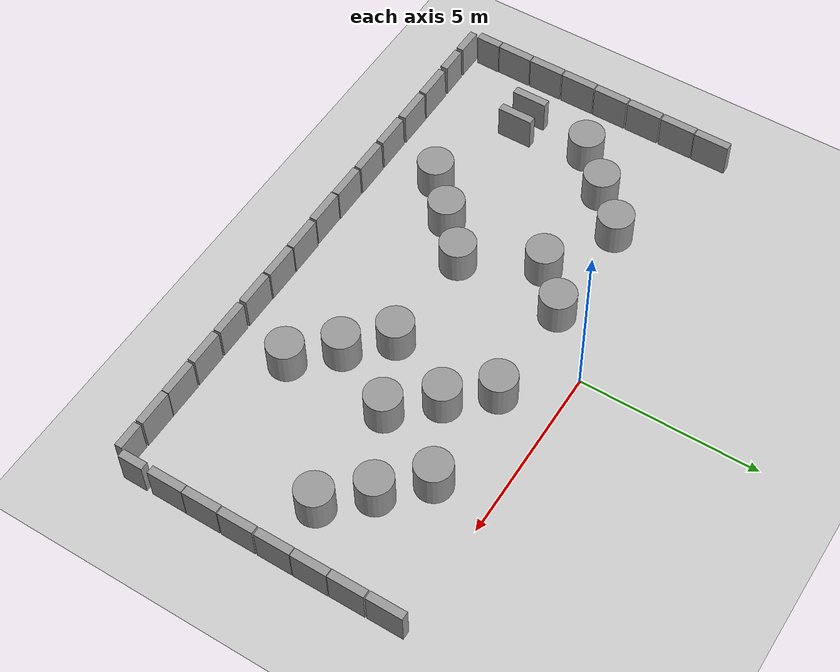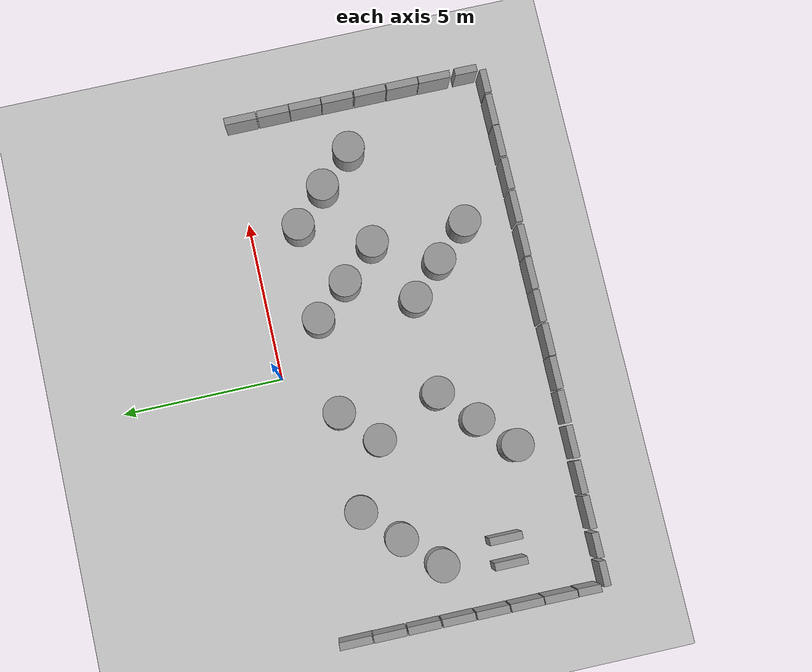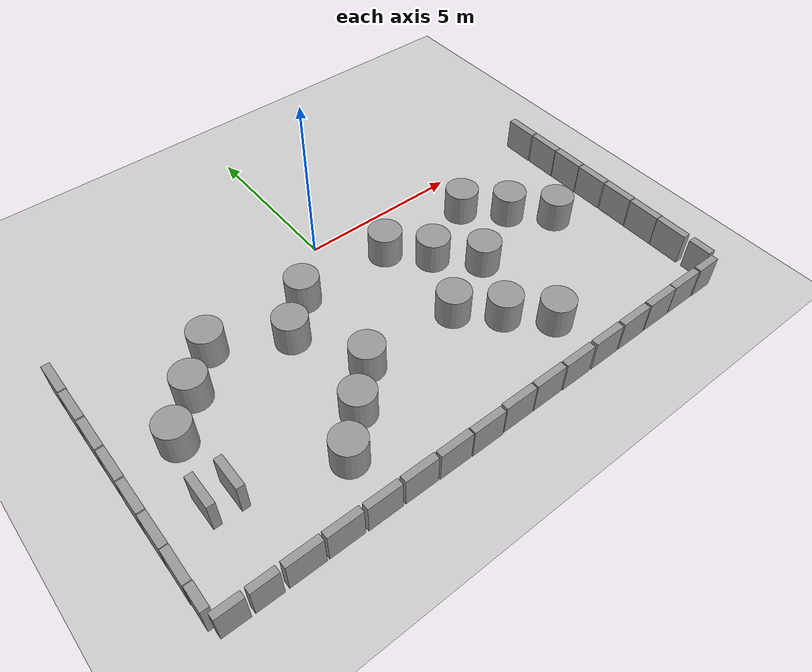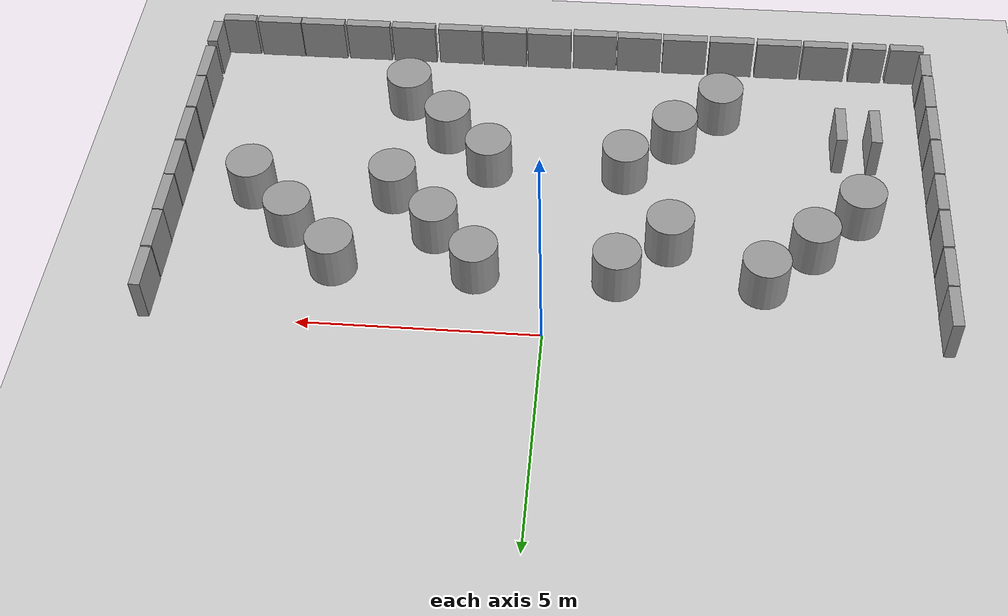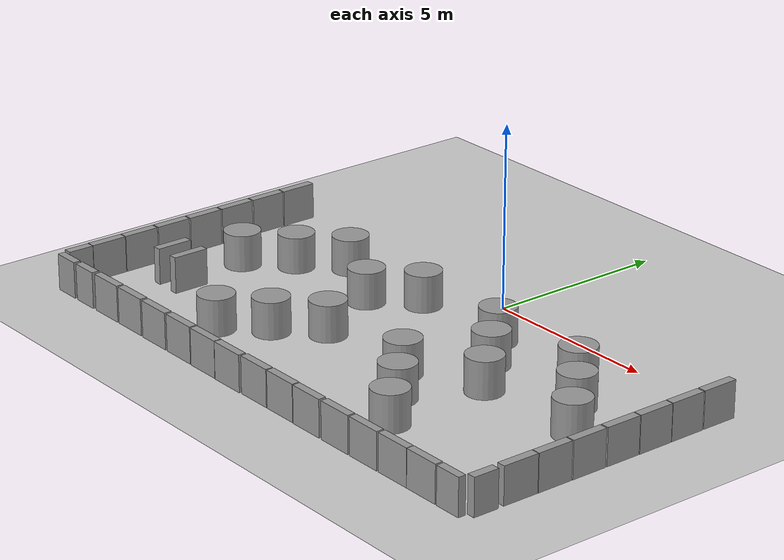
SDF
<sdf version="1.6">
 <world name="default">
  <model name="ground_plane">
   <static>1</static>
   <static>1</static>
   <link name="link">
    <collision name="collision">
     <geometry><plane><normal>0 0 1</normal><size>100 100</size></plane></geometry>
     <surface><friction><ode><mu>100</mu><mu2>50</mu2></ode></friction></surface>
    </collision>
    <visual name="visual">
     <cast_shadows>0</cast_shadows>
     <geometry><plane><normal>0 0 1</normal><size>100 100</size></plane></geometry>
     <material>
      <script><uri>file://media/materials/scripts/gazebo.material</uri><name>Gazebo/Grey</name></script>
     </material>
    </visual>
   </link>
  </model>
  <model name="unit_box_0_clone_7">
   <pose>8.11276 -0.449321 0.5 1e-06 1e-06 0.000191</pose>
   <link name="link">
    <inertial>
     <mass>1</mass>
     <inertia>
      <ixx>0.166667</ixx>
      <ixy>0</ixy>
      <ixz>0</ixz>
      <iyy>0.166667</iyy>
      <iyz>0</iyz>
      <izz>0.166667</izz>
     </inertia>
    </inertial>
    <collision name="collision"><geometry><box><size>0.230819 1 1</size></box></geometry></collision>
    <visual name="visual">
     <geometry><box><size>0.230819 1 1</size></box></geometry>
     <material>
      <script><name>Gazebo/Grey</name><uri>file://media/materials/scripts/gazebo.material</uri></script>
     </material>
    </visual>
   </link>
  </model>
  <model name="unit_box_0_clone_8">
   <pose>8.11912 -1.48629 0.5 1e-06 1e-06 0.000191</pose>
   <link name="link">
    <inertial>
     <mass>1</mass>
     <inertia>
      <ixx>0.166667</ixx>
      <ixy>0</ixy>
      <ixz>0</ixz>
      <iyy>0.166667</iyy>
      <iyz>0</iyz>
      <izz>0.166667</izz>
     </inertia>
    </inertial>
    <collision name="collision"><geometry><box><size>0.230819 1 1</size></box></geometry></collision>
    <visual name="visual">
     <geometry><box><size>0.230819 1 1</size></box></geometry>
     <material>
      <script><name>Gazebo/Grey</name><uri>file://media/materials/scripts/gazebo.material</uri></script>
     </material>
    </visual>
   </link>
  </model>
  <model name="unit_box_0_clone_9">
   <pose>8.12548 -2.5042 0.5 1e-06 1e-06 0.000191</pose>
   <link name="link">
    <inertial>
     <mass>1</mass>
     <inertia>
      <ixx>0.166667</ixx>
      <ixy>0</ixy>
      <ixz>0</ixz>
      <iyy>0.166667</iyy>
      <iyz>0</iyz>
      <izz>0.166667</izz>
     </inertia>
    </inertial>
    <collision name="collision"><geometry><box><size>0.230819 1 1</size></box></geometry></collision>
    <visual name="visual">
     <geometry><box><size>0.230819 1 1</size></box></geometry>
     <material>
      <script><name>Gazebo/Grey</name><uri>file://media/materials/scripts/gazebo.material</uri></script>
     </material>
    </visual>
   </link>
  </model>
  <model name="unit_box_0_clone_10">
   <pose>8.12331 -3.52223 0.5 1e-06 1e-06 0.000191</pose>
   <link name="link">
    <inertial>
     <mass>1</mass>
     <inertia>
      <ixx>0.166667</ixx>
      <ixy>0</ixy>
      <ixz>0</ixz>
      <iyy>0.166667</iyy>
      <iyz>0</iyz>
      <izz>0.166667</izz>
     </inertia>
    </inertial>
    <collision name="collision"><geometry><box><size>0.230819 1 1</size></box></geometry></collision>
    <visual name="visual">
     <geometry><box><size>0.230819 1 1</size></box></geometry>
     <material>
      <script><name>Gazebo/Grey</name><uri>file://media/materials/scripts/gazebo.material</uri></script>
     </material>
    </visual>
   </link>
  </model>
  <model name="unit_box_0_clone_11">
   <pose>8.1233 -4.56316 0.5 1e-06 1e-06 0.000191</pose>
   <link name="link">
    <inertial>
     <mass>1</mass>
     <inertia>
      <ixx>0.166667</ixx>
      <ixy>0</ixy>
      <ixz>0</ixz>
      <iyy>0.166667</iyy>
      <iyz>0</iyz>
      <izz>0.166667</izz>
     </inertia>
    </inertial>
    <collision name="collision"><geometry><box><size>0.230819 1 1</size></box></geometry></collision>
    <visual name="visual">
     <geometry><box><size>0.230819 1 1</size></box></geometry>
     <material>
      <script><name>Gazebo/Grey</name><uri>file://media/materials/scripts/gazebo.material</uri></script>
     </material>
    </visual>
   </link>
  </model>
  <model name="unit_box_0_clone_12">
   <pose>8.11815 -5.59377 0.5 1e-06 1e-06 0.000191</pose>
   <link name="link">
    <inertial>
     <mass>1</mass>
     <inertia>
      <ixx>0.166667</ixx>
      <ixy>0</ixy>
      <ixz>0</ixz>
      <iyy>0.166667</iyy>
      <iyz>0</iyz>
      <izz>0.166667</izz>
     </inertia>
    </inertial>
    <collision name="collision"><geometry><box><size>0.230819 1 1</size></box></geometry></collision>
    <visual name="visual">
     <geometry><box><size>0.230819 1 1</size></box></geometry>
     <material>
      <script><name>Gazebo/Grey</name><uri>file://media/materials/scripts/gazebo.material</uri></script>
     </material>
    </visual>
   </link>
  </model>
  <model name="unit_box_0_clone_13">
   <pose>8.11333 -6.60776 0.5 1e-06 1e-06 -0.00543</pose>
   <link name="link">
    <inertial>
     <mass>1</mass>
     <inertia>
      <ixx>0.166667</ixx>
      <ixy>0</ixy>
      <ixz>0</ixz>
      <iyy>0.166667</iyy>
      <iyz>0</iyz>
      <izz>0.166667</izz>
     </inertia>
    </inertial>
    <collision name="collision"><geometry><box><size>0.230819 1 1</size></box></geometry></collision>
    <visual name="visual">
     <geometry><box><size>0.230819 1 1</size></box></geometry>
     <material>
      <script><name>Gazebo/Grey</name><uri>file://media/materials/scripts/gazebo.material</uri></script>
     </material>
    </visual>
   </link>
  </model>
  <model name="unit_box_clone_15_clone_0">
   <pose>6.71207 -8.13107 0.499999 1e-06 -2e-06 0.000235</pose>
   <link name="link">
    <inertial>
     <mass>1</mass>
     <inertia>
      <ixx>0.166667</ixx>
      <ixy>0</ixy>
      <ixz>0</ixz>
      <iyy>0.166667</iyy>
      <iyz>0</iyz>
      <izz>0.166667</izz>
     </inertia>
    </inertial>
    <collision name="collision"><geometry><box><size>1 0.210541 1</size></box></geometry></collision>
    <visual name="visual">
     <geometry><box><size>1 0.210541 1</size></box></geometry>
     <material>
      <script><name>Gazebo/Grey</name><uri>file://media/materials/scripts/gazebo.material</uri></script>
     </material>
    </visual>
   </link>
  </model>
  <model name="unit_box_clone_15_clone_1">
   <pose>5.69715 -8.13106 0.499999 1e-06 -2e-06 0.000235</pose>
   <link name="link">
    <inertial>
     <mass>1</mass>
     <inertia>
      <ixx>0.166667</ixx>
      <ixy>0</ixy>
      <ixz>0</ixz>
      <iyy>0.166667</iyy>
      <iyz>0</iyz>
      <izz>0.166667</izz>
     </inertia>
    </inertial>
    <collision name="collision"><geometry><box><size>1 0.210541 1</size></box></geometry></collision>
    <visual name="visual">
     <geometry><box><size>1 0.210541 1</size></box></geometry>
     <material>
      <script><name>Gazebo/Grey</name><uri>file://media/materials/scripts/gazebo.material</uri></script>
     </material>
    </visual>
   </link>
  </model>
  <model name="unit_box_clone_15_clone_2">
   <pose>4.63881 -8.13724 0.499999 1e-06 -2e-06 0.000235</pose>
   <link name="link">
    <inertial>
     <mass>1</mass>
     <inertia>
      <ixx>0.166667</ixx>
      <ixy>0</ixy>
      <ixz>0</ixz>
      <iyy>0.166667</iyy>
      <iyz>0</iyz>
      <izz>0.166667</izz>
     </inertia>
    </inertial>
    <collision name="collision"><geometry><box><size>1 0.210541 1</size></box></geometry></collision>
    <visual name="visual">
     <geometry><box><size>1 0.210541 1</size></box></geometry>
     <material>
      <script><name>Gazebo/Grey</name><uri>file://media/materials/scripts/gazebo.material</uri></script>
     </material>
    </visual>
   </link>
  </model>
  <model name="unit_box_clone_15_clone_3">
   <pose>3.57975 -8.13724 0.499999 1e-06 -2e-06 0.000235</pose>
   <link name="link">
    <inertial>
     <mass>1</mass>
     <inertia>
      <ixx>0.166667</ixx>
      <ixy>0</ixy>
      <ixz>0</ixz>
      <iyy>0.166667</iyy>
      <iyz>0</iyz>
      <izz>0.166667</izz>
     </inertia>
    </inertial>
    <collision name="collision"><geometry><box><size>1 0.210541 1</size></box></geometry></collision>
    <visual name="visual">
     <geometry><box><size>1 0.210541 1</size></box></geometry>
     <material>
      <script><name>Gazebo/Grey</name><uri>file://media/materials/scripts/gazebo.material</uri></script>
     </material>
    </visual>
   </link>
  </model>
  <model name="unit_box_clone_15_clone_4">
   <pose>2.49815 -8.13723 0.499999 1e-06 -2e-06 0.000235</pose>
   <link name="link">
    <inertial>
     <mass>1</mass>
     <inertia>
      <ixx>0.166667</ixx>
      <ixy>0</ixy>
      <ixz>0</ixz>
      <iyy>0.166667</iyy>
      <iyz>0</iyz>
      <izz>0.166667</izz>
     </inertia>
    </inertial>
    <collision name="collision"><geometry><box><size>1 0.210541 1</size></box></geometry></collision>
    <visual name="visual">
     <geometry><box><size>1 0.210541 1</size></box></geometry>
     <material>
      <script><name>Gazebo/Grey</name><uri>file://media/materials/scripts/gazebo.material</uri></script>
     </material>
    </visual>
   </link>
  </model>
  <model name="unit_box_clone_15_clone_5">
   <pose>1.46162 -8.12596 0.499999 1e-06 -2e-06 0.000235</pose>
   <link name="link">
    <inertial>
     <mass>1</mass>
     <inertia>
      <ixx>0.166667</ixx>
      <ixy>0</ixy>
      <ixz>0</ixz>
      <iyy>0.166667</iyy>
      <iyz>0</iyz>
      <izz>0.166667</izz>
     </inertia>
    </inertial>
    <collision name="collision"><geometry><box><size>1 0.210541 1</size></box></geometry></collision>
    <visual name="visual">
     <geometry><box><size>1 0.210541 1</size></box></geometry>
     <material>
      <script><name>Gazebo/Grey</name><uri>file://media/materials/scripts/gazebo.material</uri></script>
     </material>
    </visual>
   </link>
  </model>
  <model name="unit_box_clone_15_clone_6">
   <pose>0.425087 -8.12595 0.499999 1e-06 -2e-06 0.000235</pose>
   <link name="link">
    <inertial>
     <mass>1</mass>
     <inertia>
      <ixx>0.166667</ixx>
      <ixy>0</ixy>
      <ixz>0</ixz>
      <iyy>0.166667</iyy>
      <iyz>0</iyz>
      <izz>0.166667</izz>
     </inertia>
    </inertial>
    <collision name="collision"><geometry><box><size>1 0.210541 1</size></box></geometry></collision>
    <visual name="visual">
     <geometry><box><size>1 0.210541 1</size></box></geometry>
     <material>
      <script><name>Gazebo/Grey</name><uri>file://media/materials/scripts/gazebo.material</uri></script>
     </material>
    </visual>
   </link>
  </model>
  <model name="unit_box_clone_15_clone_7">
   <pose>-0.633975 -8.1485 0.499999 1e-06 -2e-06 0.000235</pose>
   <link name="link">
    <inertial>
     <mass>1</mass>
     <inertia>
      <ixx>0.166667</ixx>
      <ixy>0</ixy>
      <ixz>0</ixz>
      <iyy>0.166667</iyy>
      <iyz>0</iyz>
      <izz>0.166667</izz>
     </inertia>
    </inertial>
    <collision name="collision"><geometry><box><size>1 0.210541 1</size></box></geometry></collision>
    <visual name="visual">
     <geometry><box><size>1 0.210541 1</size></box></geometry>
     <material>
      <script><name>Gazebo/Grey</name><uri>file://media/materials/scripts/gazebo.material</uri></script>
     </material>
    </visual>
   </link>
  </model>
  <model name="unit_box_clone_15_clone_8">
   <pose>-1.65923 -8.13722 0.499999 1e-06 -2e-06 0.000235</pose>
   <link name="link">
    <inertial>
     <mass>1</mass>
     <inertia>
      <ixx>0.166667</ixx>
      <ixy>0</ixy>
      <ixz>0</ixz>
      <iyy>0.166667</iyy>
      <iyz>0</iyz>
      <izz>0.166667</izz>
     </inertia>
    </inertial>
    <collision name="collision"><geometry><box><size>1 0.210541 1</size></box></geometry></collision>
    <visual name="visual">
     <geometry><box><size>1 0.210541 1</size></box></geometry>
     <material>
      <script><name>Gazebo/Grey</name><uri>file://media/materials/scripts/gazebo.material</uri></script>
     </material>
    </visual>
   </link>
  </model>
  <model name="unit_box_clone_15_clone_9">
   <pose>-2.70703 -8.12597 0.499999 1e-06 -2e-06 0.000235</pose>
   <link name="link">
    <inertial>
     <mass>1</mass>
     <inertia>
      <ixx>0.166667</ixx>
      <ixy>0</ixy>
      <ixz>0</ixz>
      <iyy>0.166667</iyy>
      <iyz>0</iyz>
      <izz>0.166667</izz>
     </inertia>
    </inertial>
    <collision name="collision"><geometry><box><size>1 0.210541 1</size></box></geometry></collision>
    <visual name="visual">
     <geometry><box><size>1 0.210541 1</size></box></geometry>
     <material>
      <script><name>Gazebo/Grey</name><uri>file://media/materials/scripts/gazebo.material</uri></script>
     </material>
    </visual>
   </link>
  </model>
  <model name="unit_box_clone_15_clone_10">
   <pose>-3.77736 -8.12596 0.499999 1e-06 -2e-06 0.000235</pose>
   <link name="link">
    <inertial>
     <mass>1</mass>
     <inertia>
      <ixx>0.166667</ixx>
      <ixy>0</ixy>
      <ixz>0</ixz>
      <iyy>0.166667</iyy>
      <iyz>0</iyz>
      <izz>0.166667</izz>
     </inertia>
    </inertial>
    <collision name="collision"><geometry><box><size>1 0.210541 1</size></box></geometry></collision>
    <visual name="visual">
     <geometry><box><size>1 0.210541 1</size></box></geometry>
     <material>
      <script><name>Gazebo/Grey</name><uri>file://media/materials/scripts/gazebo.material</uri></script>
     </material>
    </visual>
   </link>
  </model>
  <model name="unit_box_clone_15_clone_11">
   <pose>-4.85896 -8.1147 0.499999 1e-06 -2e-06 0.000235</pose>
   <link name="link">
    <inertial>
     <mass>1</mass>
     <inertia>
      <ixx>0.166667</ixx>
      <ixy>0</ixy>
      <ixz>0</ixz>
      <iyy>0.166667</iyy>
      <iyz>0</iyz>
      <izz>0.166667</izz>
     </inertia>
    </inertial>
    <collision name="collision"><geometry><box><size>1 0.210541 1</size></box></geometry></collision>
    <visual name="visual">
     <geometry><box><size>1 0.210541 1</size></box></geometry>
     <material>
      <script><name>Gazebo/Grey</name><uri>file://media/materials/scripts/gazebo.material</uri></script>
     </material>
    </visual>
   </link>
  </model>
  <model name="unit_box_clone_15_clone_12">
   <pose>-5.91802 -8.11469 0.499999 1e-06 -2e-06 0.000235</pose>
   <link name="link">
    <inertial>
     <mass>1</mass>
     <inertia>
      <ixx>0.166667</ixx>
      <ixy>0</ixy>
      <ixz>0</ixz>
      <iyy>0.166667</iyy>
      <iyz>0</iyz>
      <izz>0.166667</izz>
     </inertia>
    </inertial>
    <collision name="collision"><geometry><box><size>1 0.210541 1</size></box></geometry></collision>
    <visual name="visual">
     <geometry><box><size>1 0.210541 1</size></box></geometry>
     <material>
      <script><name>Gazebo/Grey</name><uri>file://media/materials/scripts/gazebo.material</uri></script>
     </material>
    </visual>
   </link>
  </model>
  <model name="unit_box_0_clone_4_clone_7">
   <pose>-8.12609 -0.518035 0.5 1e-06 1e-06 0.000191</pose>
   <link name="link">
    <inertial>
     <mass>1</mass>
     <inertia>
      <ixx>0.166667</ixx>
      <ixy>0</ixy>
      <ixz>0</ixz>
      <iyy>0.166667</iyy>
      <iyz>0</iyz>
      <izz>0.166667</izz>
     </inertia>
    </inertial>
    <collision name="collision"><geometry><box><size>0.230819 1 1</size></box></geometry></collision>
    <visual name="visual">
     <geometry><box><size>0.230819 1 1</size></box></geometry>
     <material>
      <script><name>Gazebo/Grey</name><uri>file://media/materials/scripts/gazebo.material</uri></script>
     </material>
    </visual>
   </link>
  </model>
  <model name="unit_box_0_clone_4_clone_8">
   <pose>-8.13284 -1.54445 0.5 1e-06 1e-06 0.000191</pose>
   <link name="link">
    <inertial>
     <mass>1</mass>
     <inertia>
      <ixx>0.166667</ixx>
      <ixy>0</ixy>
      <ixz>0</ixz>
      <iyy>0.166667</iyy>
      <iyz>0</iyz>
      <izz>0.166667</izz>
     </inertia>
    </inertial>
    <collision name="collision"><geometry><box><size>0.230819 1 1</size></box></geometry></collision>
    <visual name="visual">
     <geometry><box><size>0.230819 1 1</size></box></geometry>
     <material>
      <script><name>Gazebo/Grey</name><uri>file://media/materials/scripts/gazebo.material</uri></script>
     </material>
    </visual>
   </link>
  </model>
  <model name="unit_box_0_clone_4_clone_9">
   <pose>-8.13285 -2.58439 0.5 1e-06 1e-06 0.000191</pose>
   <link name="link">
    <inertial>
     <mass>1</mass>
     <inertia>
      <ixx>0.166667</ixx>
      <ixy>0</ixy>
      <ixz>0</ixz>
      <iyy>0.166667</iyy>
      <iyz>0</iyz>
      <izz>0.166667</izz>
     </inertia>
    </inertial>
    <collision name="collision"><geometry><box><size>0.230819 1 1</size></box></geometry></collision>
    <visual name="visual">
     <geometry><box><size>0.230819 1 1</size></box></geometry>
     <material>
      <script><name>Gazebo/Grey</name><uri>file://media/materials/scripts/gazebo.material</uri></script>
     </material>
    </visual>
   </link>
  </model>
  <model name="unit_box_0_clone_4_clone_10">
   <pose>-8.13285 -3.62431 0.5 1e-06 1e-06 0.000191</pose>
   <link name="link">
    <inertial>
     <mass>1</mass>
     <inertia>
      <ixx>0.166667</ixx>
      <ixy>0</ixy>
      <ixz>0</ixz>
      <iyy>0.166667</iyy>
      <iyz>0</iyz>
      <izz>0.166667</izz>
     </inertia>
    </inertial>
    <collision name="collision"><geometry><box><size>0.230819 1 1</size></box></geometry></collision>
    <visual name="visual">
     <geometry><box><size>0.230819 1 1</size></box></geometry>
     <material>
      <script><name>Gazebo/Grey</name><uri>file://media/materials/scripts/gazebo.material</uri></script>
     </material>
    </visual>
   </link>
  </model>
  <model name="unit_box_0_clone_4_clone_11">
   <pose>-8.1396 -4.65747 0.5 1e-06 1e-06 0.000191</pose>
   <link name="link">
    <inertial>
     <mass>1</mass>
     <inertia>
      <ixx>0.166667</ixx>
      <ixy>0</ixy>
      <ixz>0</ixz>
      <iyy>0.166667</iyy>
      <iyz>0</iyz>
      <izz>0.166667</izz>
     </inertia>
    </inertial>
    <collision name="collision"><geometry><box><size>0.230819 1 1</size></box></geometry></collision>
    <visual name="visual">
     <geometry><box><size>0.230819 1 1</size></box></geometry>
     <material>
      <script><name>Gazebo/Grey</name><uri>file://media/materials/scripts/gazebo.material</uri></script>
     </material>
    </visual>
   </link>
  </model>
  <model name="unit_box_0_clone_4_clone_12">
   <pose>-8.1396 -5.69064 0.5 1e-06 1e-06 0.000191</pose>
   <link name="link">
    <inertial>
     <mass>1</mass>
     <inertia>
      <ixx>0.166667</ixx>
      <ixy>0</ixy>
      <ixz>0</ixz>
      <iyy>0.166667</iyy>
      <iyz>0</iyz>
      <izz>0.166667</izz>
     </inertia>
    </inertial>
    <collision name="collision"><geometry><box><size>0.230819 1 1</size></box></geometry></collision>
    <visual name="visual">
     <geometry><box><size>0.230819 1 1</size></box></geometry>
     <material>
      <script><name>Gazebo/Grey</name><uri>file://media/materials/scripts/gazebo.material</uri></script>
     </material>
    </visual>
   </link>
  </model>
  <model name="unit_box_0_clone_4_clone_13">
   <pose>-8.14113 -6.70873 0.5 0 0 -0.008861</pose>
   <link name="link">
    <inertial>
     <mass>1</mass>
     <inertia>
      <ixx>0.166667</ixx>
      <ixy>0</ixy>
      <ixz>0</ixz>
      <iyy>0.166667</iyy>
      <iyz>0</iyz>
      <izz>0.166667</izz>
     </inertia>
    </inertial>
    <collision name="collision"><geometry><box><size>0.230819 1 1</size></box></geometry></collision>
    <visual name="visual">
     <geometry><box><size>0.230819 1 1</size></box></geometry>
     <material>
      <script><name>Gazebo/Grey</name><uri>file://media/materials/scripts/gazebo.material</uri></script>
     </material>
    </visual>
   </link>
  </model>
  <model name="unit_box_clone_11_clone_1_clone_0">
   <pose>-6.90881 -8.11956 0.499997 -2e-06 -8e-06 -0.000196</pose>
   <link name="link">
    <inertial>
     <mass>1</mass>
     <inertia>
      <ixx>0.166667</ixx>
      <ixy>0</ixy>
      <ixz>0</ixz>
      <iyy>0.166667</iyy>
      <iyz>0</iyz>
      <izz>0.166667</izz>
     </inertia>
    </inertial>
    <collision name="collision"><geometry><box><size>0.750223 0.210541 1</size></box></geometry></collision>
    <visual name="visual">
     <geometry><box><size>0.750223 0.210541 1</size></box></geometry>
     <material>
      <script><name>Gazebo/Grey</name><uri>file://media/materials/scripts/gazebo.material</uri></script>
     </material>
    </visual>
   </link>
  </model>
  <model name="unit_box_0_clone_4_clone_13_clone_clone">
   <pose>-8.13833 -7.57661 0.499997 7e-06 -2e-06 -0.014534</pose>
   <link name="link">
    <inertial>
     <mass>1</mass>
     <inertia>
      <ixx>0.166667</ixx>
      <ixy>0</ixy>
      <ixz>0</ixz>
      <iyy>0.166667</iyy>
      <iyz>0</iyz>
      <izz>0.166667</izz>
     </inertia>
    </inertial>
    <collision name="collision"><geometry><box><size>0.230819 0.700336 1</size></box></geometry></collision>
    <visual name="visual">
     <geometry><box><size>0.230819 0.700336 1</size></box></geometry>
     <material>
      <script><name>Gazebo/Grey</name><uri>file://media/materials/scripts/gazebo.material</uri></script>
     </material>
    </visual>
   </link>
  </model>
  <model name="unit_box_clone_11_clone_1_clone_0_clone">
   <pose>-7.75474 -8.12201 0.5 -0 1e-06 -0.00569</pose>
   <link name="link">
    <inertial>
     <mass>1</mass>
     <inertia>
      <ixx>0.166667</ixx>
      <ixy>0</ixy>
      <ixz>0</ixz>
      <iyy>0.166667</iyy>
      <iyz>0</iyz>
      <izz>0.166667</izz>
     </inertia>
    </inertial>
    <collision name="collision"><geometry><box><size>0.750223 0.210541 1</size></box></geometry></collision>
    <visual name="visual">
     <geometry><box><size>0.750223 0.210541 1</size></box></geometry>
     <material>
      <script><name>Gazebo/Grey</name><uri>file://media/materials/scripts/gazebo.material</uri></script>
     </material>
    </visual>
   </link>
  </model>
  <model name="unit_box_clone_11_clone_1_clone_2">
   <pose>7.64248 -8.13928 0.499997 -2e-06 7e-06 0.001332</pose>
   <link name="link">
    <inertial>
     <mass>1</mass>
     <inertia>
      <ixx>0.166667</ixx>
      <ixy>0</ixy>
      <ixz>0</ixz>
      <iyy>0.166667</iyy>
      <iyz>0</iyz>
      <izz>0.166667</izz>
     </inertia>
    </inertial>
    <collision name="collision"><geometry><box><size>0.750223 0.210541 1</size></box></geometry></collision>
    <visual name="visual">
     <geometry><box><size>0.750223 0.210541 1</size></box></geometry>
     <material>
      <script><name>Gazebo/Grey</name><uri>file://media/materials/scripts/gazebo.material</uri></script>
     </material>
    </visual>
   </link>
  </model>
  <model name="unit_box_0_clone_4_clone_13_clone_clone_clone">
   <pose>8.11858 -7.62155 0.499997 -7e-06 -1e-06 -0.005477</pose>
   <link name="link">
    <inertial>
     <mass>1</mass>
     <inertia>
      <ixx>0.166667</ixx>
      <ixy>0</ixy>
      <ixz>0</ixz>
      <iyy>0.166667</iyy>
      <iyz>0</iyz>
      <izz>0.166667</izz>
     </inertia>
    </inertial>
    <collision name="collision"><geometry><box><size>0.230819 0.700336 1</size></box></geometry></collision>
    <visual name="visual">
     <geometry><box><size>0.230819 0.700336 1</size></box></geometry>
     <material>
      <script><name>Gazebo/Grey</name><uri>file://media/materials/scripts/gazebo.material</uri></script>
     </material>
    </visual>
   </link>
  </model>
  <model name="unit_cylinder_clone_0_clone_1">
   <pose>1.49841 -1.48926 0.499997 4e-06 3e-06 -0</pose>
   <link name="link">
    <inertial>
     <mass>1</mass>
     <inertia><ixx>0.145833</ixx><ixy>0</ixy><ixz>0</ixz><iyy>0.145833</iyy><iyz>0</iyz><izz>0.125</izz></inertia>
    </inertial>
    <collision name="collision">
     <geometry><cylinder><radius>0.5</radius><length>1</length></cylinder></geometry>
    </collision>
    <visual name="visual">
     <geometry><cylinder><radius>0.5</radius><length>1</length></cylinder></geometry>
     <material>
      <script><name>Gazebo/Grey</name><uri>file://media/materials/scripts/gazebo.material</uri></script>
     </material>
    </visual>
   </link>
  </model>
  <model name="unit_cylinder_clone_0_clone_2">
   <pose>2.4503 -2.52971 0.499997 4e-06 4e-06 -0</pose>
   <link name="link">
    <inertial>
     <mass>1</mass>
     <inertia><ixx>0.145833</ixx><ixy>0</ixy><ixz>0</ixz><iyy>0.145833</iyy><iyz>0</iyz><izz>0.125</izz></inertia>
    </inertial>
    <collision name="collision">
     <geometry><cylinder><radius>0.5</radius><length>1</length></cylinder></geometry>
    </collision>
    <visual name="visual">
     <geometry><cylinder><radius>0.5</radius><length>1</length></cylinder></geometry>
     <material>
      <script><name>Gazebo/Grey</name><uri>file://media/materials/scripts/gazebo.material</uri></script>
     </material>
    </visual>
   </link>
  </model>
  <model name="unit_cylinder_clone_0_clone_3">
   <pose>-1.42369 -1.48925 0.499994 -4e-06 -4e-06 -0</pose>
   <link name="link">
    <inertial>
     <mass>1</mass>
     <inertia><ixx>0.145833</ixx><ixy>0</ixy><ixz>0</ixz><iyy>0.145833</iyy><iyz>0</iyz><izz>0.125</izz></inertia>
    </inertial>
    <collision name="collision">
     <geometry><cylinder><radius>0.5</radius><length>1</length></cylinder></geometry>
    </collision>
    <visual name="visual">
     <geometry><cylinder><radius>0.5</radius><length>1</length></cylinder></geometry>
     <material>
      <script><name>Gazebo/Grey</name><uri>file://media/materials/scripts/gazebo.material</uri></script>
     </material>
    </visual>
   </link>
  </model>
  <model name="unit_cylinder_clone_0_clone_4">
   <pose>-2.48628 -2.50755 0.499998 3e-06 4e-06 -0</pose>
   <link name="link">
    <inertial>
     <mass>1</mass>
     <inertia><ixx>0.145833</ixx><ixy>0</ixy><ixz>0</ixz><iyy>0.145833</iyy><iyz>0</iyz><izz>0.125</izz></inertia>
    </inertial>
    <collision name="collision">
     <geometry><cylinder><radius>0.5</radius><length>1</length></cylinder></geometry>
    </collision>
    <visual name="visual">
     <geometry><cylinder><radius>0.5</radius><length>1</length></cylinder></geometry>
     <material>
      <script><name>Gazebo/Grey</name><uri>file://media/materials/scripts/gazebo.material</uri></script>
     </material>
    </visual>
   </link>
  </model>
  <model name="unit_cylinder_clone_0_clone_11">
   <pose>1.49217 -4.52583 0.499998 3e-06 -2e-06 0</pose>
   <link name="link">
    <inertial>
     <mass>1</mass>
     <inertia><ixx>0.145833</ixx><ixy>0</ixy><ixz>0</ixz><iyy>0.145833</iyy><iyz>0</iyz><izz>0.125</izz></inertia>
    </inertial>
    <collision name="collision">
     <geometry><cylinder><radius>0.5</radius><length>1</length></cylinder></geometry>
    </collision>
    <visual name="visual">
     <geometry><cylinder><radius>0.5</radius><length>1</length></cylinder></geometry>
     <material>
      <script><name>Gazebo/Grey</name><uri>file://media/materials/scripts/gazebo.material</uri></script>
     </material>
    </visual>
   </link>
  </model>
  <model name="unit_cylinder_clone_0_clone_12">
   <pose>2.49272 -5.49412 0.499992 -3e-06 3e-06 0</pose>
   <link name="link">
    <inertial>
     <mass>1</mass>
     <inertia><ixx>0.145833</ixx><ixy>0</ixy><ixz>0</ixz><iyy>0.145833</iyy><iyz>0</iyz><izz>0.125</izz></inertia>
    </inertial>
    <collision name="collision">
     <geometry><cylinder><radius>0.5</radius><length>1</length></cylinder></geometry>
    </collision>
    <visual name="visual">
     <geometry><cylinder><radius>0.5</radius><length>1</length></cylinder></geometry>
     <material>
      <script><name>Gazebo/Grey</name><uri>file://media/materials/scripts/gazebo.material</uri></script>
     </material>
    </visual>
   </link>
  </model>
  <model name="unit_cylinder_clone_0_clone_13">
   <pose>3.47713 -6.51082 0.499998 3e-06 -2e-06 0</pose>
   <link name="link">
    <inertial>
     <mass>1</mass>
     <inertia><ixx>0.145833</ixx><ixy>0</ixy><ixz>0</ixz><iyy>0.145833</iyy><iyz>0</iyz><izz>0.125</izz></inertia>
    </inertial>
    <collision name="collision">
     <geometry><cylinder><radius>0.5</radius><length>1</length></cylinder></geometry>
    </collision>
    <visual name="visual">
     <geometry><cylinder><radius>0.5</radius><length>1</length></cylinder></geometry>
     <material>
      <script><name>Gazebo/Grey</name><uri>file://media/materials/scripts/gazebo.material</uri></script>
     </material>
    </visual>
   </link>
  </model>
  <model name="unit_cylinder_clone_0_clone_14">
   <pose>-1.47722 -4.52582 0.499998 3e-06 -2e-06 0</pose>
   <link name="link">
    <inertial>
     <mass>1</mass>
     <inertia><ixx>0.145833</ixx><ixy>0</ixy><ixz>0</ixz><iyy>0.145833</iyy><iyz>0</iyz><izz>0.125</izz></inertia>
    </inertial>
    <collision name="collision">
     <geometry><cylinder><radius>0.5</radius><length>1</length></cylinder></geometry>
    </collision>
    <visual name="visual">
     <geometry><cylinder><radius>0.5</radius><length>1</length></cylinder></geometry>
     <material>
      <script><name>Gazebo/Grey</name><uri>file://media/materials/scripts/gazebo.material</uri></script>
     </material>
    </visual>
   </link>
  </model>
  <model name="unit_cylinder_clone_0_clone_15">
   <pose>-2.51925 -5.5229 0.499998 3e-06 -2e-06 0</pose>
   <link name="link">
    <inertial>
     <mass>1</mass>
     <inertia><ixx>0.145833</ixx><ixy>0</ixy><ixz>0</ixz><iyy>0.145833</iyy><iyz>0</iyz><izz>0.125</izz></inertia>
    </inertial>
    <collision name="collision">
     <geometry><cylinder><radius>0.5</radius><length>1</length></cylinder></geometry>
    </collision>
    <visual name="visual">
     <geometry><cylinder><radius>0.5</radius><length>1</length></cylinder></geometry>
     <material>
      <script><name>Gazebo/Grey</name><uri>file://media/materials/scripts/gazebo.material</uri></script>
     </material>
    </visual>
   </link>
  </model>
  <model name="unit_cylinder_clone_0_clone_16">
   <pose>-3.51983 -6.49489 0.499993 -3e-06 2e-06 0</pose>
   <link name="link">
    <inertial>
     <mass>1</mass>
     <inertia><ixx>0.145833</ixx><ixy>0</ixy><ixz>0</ixz><iyy>0.145833</iyy><iyz>0</iyz><izz>0.125</izz></inertia>
    </inertial>
    <collision name="collision">
     <geometry><cylinder><radius>0.5</radius><length>1</length></cylinder></geometry>
    </collision>
    <visual name="visual">
     <geometry><cylinder><radius>0.5</radius><length>1</length></cylinder></geometry>
     <material>
      <script><name>Gazebo/Grey</name><uri>file://media/materials/scripts/gazebo.material</uri></script>
     </material>
    </visual>
   </link>
  </model>
  <model name="unit_cylinder_clone_0_clone_17">
   <pose>4.47321 -1.50215 0.499998 3e-06 -3e-06 0</pose>
   <link name="link">
    <inertial>
     <mass>1</mass>
     <inertia><ixx>0.145833</ixx><ixy>0</ixy><ixz>0</ixz><iyy>0.145833</iyy><iyz>0</iyz><izz>0.125</izz></inertia>
    </inertial>
    <collision name="collision">
     <geometry><cylinder><radius>0.5</radius><length>1</length></cylinder></geometry>
    </collision>
    <visual name="visual">
     <geometry><cylinder><radius>0.5</radius><length>1</length></cylinder></geometry>
     <material>
      <script><name>Gazebo/Grey</name><uri>file://media/materials/scripts/gazebo.material</uri></script>
     </material>
    </visual>
   </link>
  </model>
  <model name="unit_cylinder_clone_0_clone_18">
   <pose>5.52107 -2.49554 0.499993 -3e-06 3e-06 0</pose>
   <link name="link">
    <inertial>
     <mass>1</mass>
     <inertia><ixx>0.145833</ixx><ixy>0</ixy><ixz>0</ixz><iyy>0.145833</iyy><iyz>0</iyz><izz>0.125</izz></inertia>
    </inertial>
    <collision name="collision">
     <geometry><cylinder><radius>0.5</radius><length>1</length></cylinder></geometry>
    </collision>
    <visual name="visual">
     <geometry><cylinder><radius>0.5</radius><length>1</length></cylinder></geometry>
     <material>
      <script><name>Gazebo/Grey</name><uri>file://media/materials/scripts/gazebo.material</uri></script>
     </material>
    </visual>
   </link>
  </model>
  <model name="unit_cylinder_clone_0_clone_19">
   <pose>6.51164 -3.53064 0.499992 -3e-06 4e-06 0</pose>
   <link name="link">
    <inertial>
     <mass>1</mass>
     <inertia><ixx>0.145833</ixx><ixy>0</ixy><ixz>0</ixz><iyy>0.145833</iyy><iyz>0</iyz><izz>0.125</izz></inertia>
    </inertial>
    <collision name="collision">
     <geometry><cylinder><radius>0.5</radius><length>1</length></cylinder></geometry>
    </collision>
    <visual name="visual">
     <geometry><cylinder><radius>0.5</radius><length>1</length></cylinder></geometry>
     <material>
      <script><name>Gazebo/Grey</name><uri>file://media/materials/scripts/gazebo.material</uri></script>
     </material>
    </visual>
   </link>
  </model>
  <model name="unit_cylinder_clone_0_clone_24">
   <pose>3.46094 -3.60407 0.499998 3e-06 -3e-06 0</pose>
   <link name="link">
    <inertial>
     <mass>1</mass>
     <inertia><ixx>0.145833</ixx><ixy>0</ixy><ixz>0</ixz><iyy>0.145833</iyy><iyz>0</iyz><izz>0.125</izz></inertia>
    </inertial>
    <collision name="collision">
     <geometry><cylinder><radius>0.5</radius><length>1</length></cylinder></geometry>
    </collision>
    <visual name="visual">
     <geometry><cylinder><radius>0.5</radius><length>1</length></cylinder></geometry>
     <material>
      <script><name>Gazebo/Grey</name><uri>file://media/materials/scripts/gazebo.material</uri></script>
     </material>
    </visual>
   </link>
  </model>
  <model name="unit_cylinder_clone_0_clone_28">
   <pose>-4.45715 -1.48816 0.499994 -4e-06 -3e-06 -0</pose>
   <link name="link">
    <inertial>
     <mass>1</mass>
     <inertia><ixx>0.145833</ixx><ixy>0</ixy><ixz>0</ixz><iyy>0.145833</iyy><iyz>0</iyz><izz>0.125</izz></inertia>
    </inertial>
    <collision name="collision">
     <geometry><cylinder><radius>0.5</radius><length>1</length></cylinder></geometry>
    </collision>
    <visual name="visual">
     <geometry><cylinder><radius>0.5</radius><length>1</length></cylinder></geometry>
     <material>
      <script><name>Gazebo/Grey</name><uri>file://media/materials/scripts/gazebo.material</uri></script>
     </material>
    </visual>
   </link>
  </model>
  <model name="unit_cylinder_clone_0_clone_29">
   <pose>-5.49699 -2.4939 0.499996 4e-06 3e-06 -0</pose>
   <link name="link">
    <inertial>
     <mass>1</mass>
     <inertia><ixx>0.145833</ixx><ixy>0</ixy><ixz>0</ixz><iyy>0.145833</iyy><iyz>0</iyz><izz>0.125</izz></inertia>
    </inertial>
    <collision name="collision">
     <geometry><cylinder><radius>0.5</radius><length>1</length></cylinder></geometry>
    </collision>
    <visual name="visual">
     <geometry><cylinder><radius>0.5</radius><length>1</length></cylinder></geometry>
     <material>
      <script><name>Gazebo/Grey</name><uri>file://media/materials/scripts/gazebo.material</uri></script>
     </material>
    </visual>
   </link>
  </model>
  <model name="unit_cylinder_clone_0_clone_30">
   <pose>-6.50274 -3.51669 0.499993 -4e-06 -2e-06 -0</pose>
   <link name="link">
    <inertial>
     <mass>1</mass>
     <inertia><ixx>0.145833</ixx><ixy>0</ixy><ixz>0</ixz><iyy>0.145833</iyy><iyz>0</iyz><izz>0.125</izz></inertia>
    </inertial>
    <collision name="collision">
     <geometry><cylinder><radius>0.5</radius><length>1</length></cylinder></geometry>
    </collision>
    <visual name="visual">
     <geometry><cylinder><radius>0.5</radius><length>1</length></cylinder></geometry>
     <material>
      <script><name>Gazebo/Grey</name><uri>file://media/materials/scripts/gazebo.material</uri></script>
     </material>
    </visual>
   </link>
  </model>
  <model name="unit_box_0_clone_4_clone_0_clone_1">
   <pose>-6.87898 -5.49774 0.499996 -7e-06 2e-06 0.000232</pose>
   <link name="link">
    <inertial>
     <mass>1</mass>
     <inertia>
      <ixx>0.166667</ixx>
      <ixy>0</ixy>
      <ixz>0</ixz>
      <iyy>0.166667</iyy>
      <iyz>0</iyz>
      <izz>0.166667</izz>
     </inertia>
    </inertial>
    <collision name="collision"><geometry><box><size>0.230819 1 1</size></box></geometry></collision>
    <visual name="visual">
     <geometry><box><size>0.230819 1 1</size></box></geometry>
     <material>
      <script><name>Gazebo/Grey</name><uri>file://media/materials/scripts/gazebo.material</uri></script>
     </material>
    </visual>
   </link>
  </model>
  <model name="unit_box_0_clone_4_clone_0_clone_2">
   <pose>-6.13223 -5.51363 0.499996 -9e-06 -0 0.000222</pose>
   <link name="link">
    <inertial>
     <mass>1</mass>
     <inertia>
      <ixx>0.166667</ixx>
      <ixy>0</ixy>
      <ixz>0</ixz>
      <iyy>0.166667</iyy>
      <iyz>0</iyz>
      <izz>0.166667</izz>
     </inertia>
    </inertial>
    <collision name="collision"><geometry><box><size>0.230819 1 1</size></box></geometry></collision>
    <visual name="visual">
     <geometry><box><size>0.230819 1 1</size></box></geometry>
     <material>
      <script><name>Gazebo/Grey</name><uri>file://media/materials/scripts/gazebo.material</uri></script>
     </material>
    </visual>
   </link>
  </model>
 </world>
</sdf>
